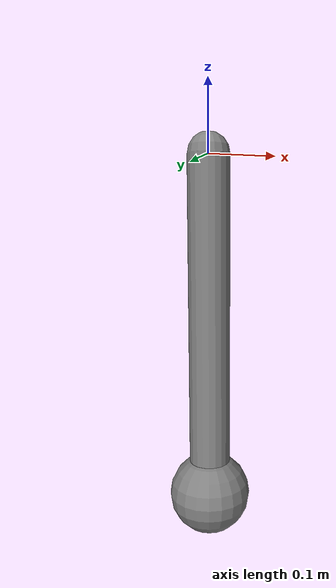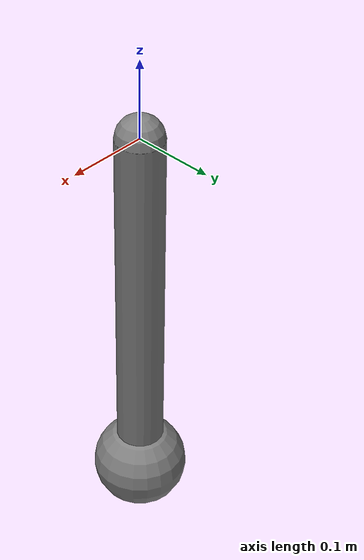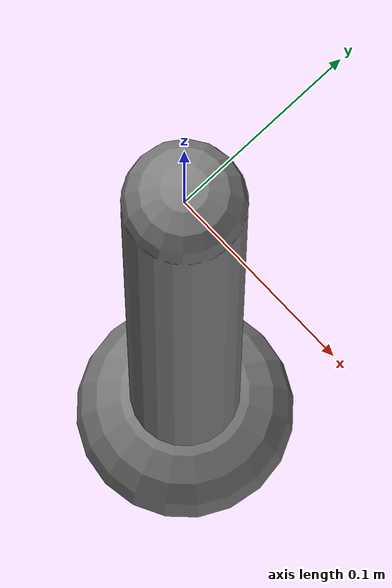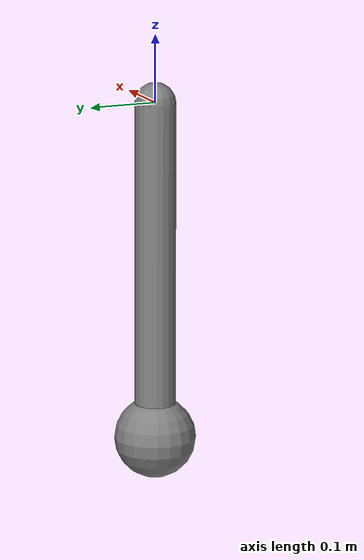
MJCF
<mujoco model="connect-to-world">
  <compiler angle="radian"/>
  <option gravity="0 0 -9.81" timestep="0.001" solver="Newton"
          iterations="50" tolerance="1e-10">
    <flag energy="enable"/>
  </option>

  <default>
    <geom contype="0" conaffinity="0"/>
  </default>

  <worldbody>
    <body name="link" pos="0 0 0">
      <freejoint damping="0.01"/>
      <geom name="rod" type="capsule" fromto="0 0 0 0 0 -0.5" size="0.03" mass="1"/>
      <geom name="ball" type="sphere" pos="0 0 -0.5" size="0.06" mass="0.5"/>
    </body>
  </worldbody>

  <equality>
    <connect body1="link" anchor="0 0 0" solref="0.005 1.0"/>
  </equality>
</mujoco>
